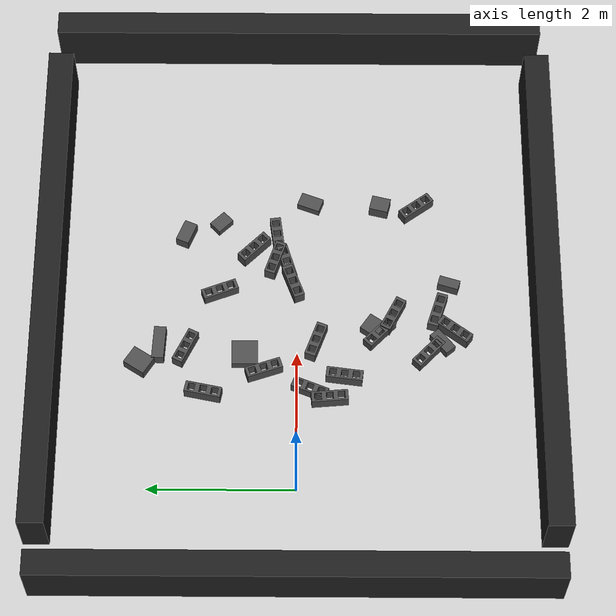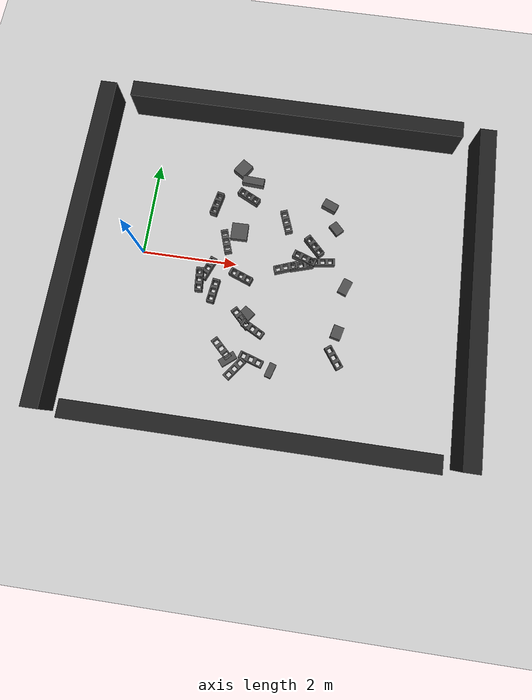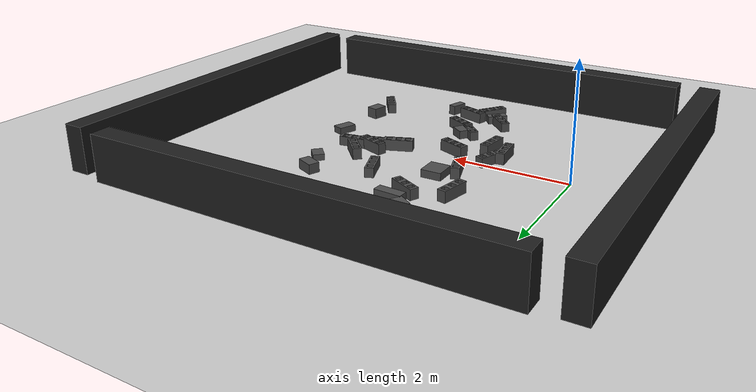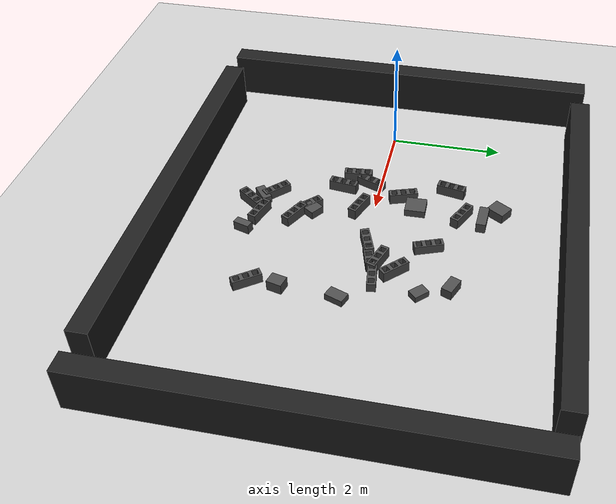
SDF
<sdf version="1.6">
 <world name="default">
  <plugin name="xbot2_clock" filename="libxbot2_gz_clock.so"/>
  <gravity>0 0 -9.81</gravity>
  <model name="ground_plane">
   <static>1</static>
   <link name="link">
    <collision name="collision">
     <geometry><plane><normal>0 0 1</normal><size>100 100</size></plane></geometry>
     <surface><friction><ode><mu>1</mu><mu2>1</mu2></ode></friction></surface>
    </collision>
    <visual name="visual">
     <cast_shadows>0</cast_shadows>
     <geometry><plane><normal>0 0 1</normal><size>100 100</size></plane></geometry>
     <material>
      <script><uri>file://media/materials/scripts/gazebo.material</uri><name>Gazebo/Grey</name></script>
     </material>
    </visual>
   </link>
  </model>
  <light name="sun" type="directional">
   <pose>0 0 10 0 -0 0</pose>
   <diffuse>0.8 0.8 0.8 1</diffuse>
   <specular>0.2 0.2 0.2 1</specular>
   <attenuation>
    <range>1000</range>
    <constant>0.9</constant>
    <linear>0.01</linear>
    <quadratic>0.001</quadratic>
   </attenuation>
   <direction>-0.5 0.1 -0.9</direction>
  </light>
  <physics name="update_rate" default="0" type="ode">
   <real_time_update_rate>4000</real_time_update_rate>
   <max_step_size>0.00025</max_step_size>
   <max_contacts>5</max_contacts>
   <bullet>
    <solver><iters>100</iters><sor>1.55</sor><type>sequential_impulse</type></solver>
    <constraints>
     <contact_surface_layer>0.2</contact_surface_layer>
     <cfm>0.005</cfm>
     <erp>0.2</erp>
     <split_impulse>1</split_impulse>
     <split_impulse_penetration_threshold>-0.01</split_impulse_penetration_threshold>
    </constraints>
   </bullet>
   <ode>
    <solver>
     <iters>50</iters>
     <sor>1.2</sor>
     <type>quick</type>
     <use_dynamic_moi_rescaling>0</use_dynamic_moi_rescaling>
    </solver>
    <constraints>
     <contact_surface_layer>0.0002</contact_surface_layer>
     <contact_max_correcting_vel>500</contact_max_correcting_vel>
     <cfm>1e-06</cfm>
     <erp>0.3</erp>
    </constraints>
   </ode>
   <real_time_factor>1</real_time_factor>
  </physics>
  <magnetic_field>6e-06 2.3e-05 -4.2e-05</magnetic_field>
  <atmosphere type="adiabatic"/>
  <scene><ambient>0.4 0.4 0.4 1</ambient><background>0.7 0.7 0.7 1</background><shadows>1</shadows></scene>
  <audio><device>default</device></audio>
  <spherical_coordinates>
   <surface_model>EARTH_WGS84</surface_model>
   <latitude_deg>0</latitude_deg>
   <longitude_deg>0</longitude_deg>
   <elevation>0</elevation>
   <heading_deg>0</heading_deg>
  </spherical_coordinates>
  <model name="box_0">
   <pose>2.089775 1.887201 0.089836 0.000000 0.000000 3.086669</pose>
   <link name="link">
    <inertial>
     <mass>1000.000000</mass>
     <inertia>
      <ixx>166.700000</ixx>
      <ixy>0.000000</ixy>
      <ixz>0.000000</ixz>
      <iyy>166.700000</iyy>
      <iyz>0.000000</iyz>
      <izz>166.700000</izz>
     </inertia>
    </inertial>
    <collision name="collision">
     <geometry><box><size>0.467557 0.166158 0.179671</size></box></geometry>
     <surface>
      <friction>
       <ode><mu>0.62</mu><mu2>0.6</mu2></ode>
       <torsional><coefficient>1.0</coefficient></torsional>
      </friction>
     </surface>
    </collision>
    <visual name="visual">
     <geometry><box><size>0.467557 0.166158 0.179671</size></box></geometry>
     <material>
      <script><name>Gazebo/DarkGrey</name><uri>file://media/materials/scripts/gazebo.material</uri></script>
     </material>
    </visual>
   </link>
  </model>
  <model name="box_1">
   <pose>1.826899 2.151613 0.084071 0.000000 0.000000 0.998339</pose>
   <link name="link">
    <inertial>
     <mass>1000.000000</mass>
     <inertia>
      <ixx>166.700000</ixx>
      <ixy>0.000000</ixy>
      <ixz>0.000000</ixz>
      <iyy>166.700000</iyy>
      <iyz>0.000000</iyz>
      <izz>166.700000</izz>
     </inertia>
    </inertial>
    <collision name="collision">
     <geometry><box><size>0.326173 0.270345 0.168143</size></box></geometry>
     <surface>
      <friction>
       <ode><mu>0.62</mu><mu2>0.6</mu2></ode>
       <torsional><coefficient>1.0</coefficient></torsional>
      </friction>
     </surface>
    </collision>
    <visual name="visual">
     <geometry><box><size>0.326173 0.270345 0.168143</size></box></geometry>
     <material>
      <script><name>Gazebo/DarkGrey</name><uri>file://media/materials/scripts/gazebo.material</uri></script>
     </material>
    </visual>
   </link>
  </model>
  <model name="box_2">
   <pose>3.486562 0.219350 0.055487 0.000000 0.000000 2.341806</pose>
   <link name="link">
    <inertial>
     <mass>1000.000000</mass>
     <inertia>
      <ixx>166.700000</ixx>
      <ixy>0.000000</ixy>
      <ixz>0.000000</ixz>
      <iyy>166.700000</iyy>
      <iyz>0.000000</iyz>
      <izz>166.700000</izz>
     </inertia>
    </inertial>
    <collision name="collision">
     <geometry><box><size>0.122181 0.135508 0.110975</size></box></geometry>
     <surface>
      <friction>
       <ode><mu>0.62</mu><mu2>0.6</mu2></ode>
       <torsional><coefficient>1.0</coefficient></torsional>
      </friction>
     </surface>
    </collision>
    <visual name="visual">
     <geometry><box><size>0.122181 0.135508 0.110975</size></box></geometry>
     <material>
      <script><name>Gazebo/DarkGrey</name><uri>file://media/materials/scripts/gazebo.material</uri></script>
     </material>
    </visual>
   </link>
  </model>
  <model name="brick_3">
   <pose>4.251493 -1.669669 0.069033 0.000000 0.000000 -0.947724</pose>
   <link name="link">
    <inertial>
     <mass>15.0</mass>
     <inertia>
      <ixx>0.07565625</ixx>
      <ixy>0.0</ixy>
      <ixz>0.0</ixz>
      <iyy>0.340625</iyy>
      <iyz>0.0</iyz>
      <izz>0.33125</izz>
     </inertia>
    </inertial>
    <collision name="collision">
     <geometry><mesh><uri>file://../config/meshes/Brick/Brick.dae</uri></mesh></geometry>
     <max_contacts>100</max_contacts>
     <surface>
      <friction>
       <ode><mu>0.62</mu><mu2>0.6</mu2></ode>
       <torsional><coefficient>1.0</coefficient></torsional>
      </friction>
     </surface>
    </collision>
    <visual name="visual">
     <geometry><mesh><uri>file://../config/meshes/Brick/Brick.dae</uri></mesh></geometry>
     <material>
      <ambient>0.3 0.3 0.3 1</ambient>
      <diffuse>0.3 0.3 0.3 1</diffuse>
      <specular>0 0 0 0</specular>
      <emissive>0 0 0 1</emissive>
     </material>
    </visual>
   </link>
  </model>
  <model name="box_4">
   <pose>4.322936 -0.180216 0.059655 0.000000 0.000000 -0.360046</pose>
   <link name="link">
    <inertial>
     <mass>1000.000000</mass>
     <inertia>
      <ixx>166.700000</ixx>
      <ixy>0.000000</ixy>
      <ixz>0.000000</ixz>
      <iyy>166.700000</iyy>
      <iyz>0.000000</iyz>
      <izz>166.700000</izz>
     </inertia>
    </inertial>
    <collision name="collision">
     <geometry><box><size>0.199363 0.322594 0.119310</size></box></geometry>
     <surface>
      <friction>
       <ode><mu>0.62</mu><mu2>0.6</mu2></ode>
       <torsional><coefficient>1.0</coefficient></torsional>
      </friction>
     </surface>
    </collision>
    <visual name="visual">
     <geometry><box><size>0.199363 0.322594 0.119310</size></box></geometry>
     <material>
      <script><name>Gazebo/DarkGrey</name><uri>file://media/materials/scripts/gazebo.material</uri></script>
     </material>
    </visual>
   </link>
  </model>
  <model name="brick_5">
   <pose>2.612326 -1.937337 0.078020 0.000000 0.000000 2.836419</pose>
   <link name="link">
    <inertial>
     <mass>15.0</mass>
     <inertia>
      <ixx>0.07565625</ixx>
      <ixy>0.0</ixy>
      <ixz>0.0</ixz>
      <iyy>0.340625</iyy>
      <iyz>0.0</iyz>
      <izz>0.33125</izz>
     </inertia>
    </inertial>
    <collision name="collision">
     <geometry><mesh><uri>file://../config/meshes/Brick/Brick.dae</uri></mesh></geometry>
     <max_contacts>100</max_contacts>
     <surface>
      <friction>
       <ode><mu>0.62</mu><mu2>0.6</mu2></ode>
       <torsional><coefficient>1.0</coefficient></torsional>
      </friction>
     </surface>
    </collision>
    <visual name="visual">
     <geometry><mesh><uri>file://../config/meshes/Brick/Brick.dae</uri></mesh></geometry>
     <material>
      <ambient>0.3 0.3 0.3 1</ambient>
      <diffuse>0.3 0.3 0.3 1</diffuse>
      <specular>0 0 0 0</specular>
      <emissive>0 0 0 1</emissive>
     </material>
    </visual>
   </link>
  </model>
  <model name="brick_6">
   <pose>1.441159 -0.178463 0.056510 0.000000 0.000000 1.193787</pose>
   <link name="link">
    <inertial>
     <mass>15.0</mass>
     <inertia>
      <ixx>0.07565625</ixx>
      <ixy>0.0</ixy>
      <ixz>0.0</ixz>
      <iyy>0.340625</iyy>
      <iyz>0.0</iyz>
      <izz>0.33125</izz>
     </inertia>
    </inertial>
    <collision name="collision">
     <geometry><mesh><uri>file://../config/meshes/Brick/Brick.dae</uri></mesh></geometry>
     <max_contacts>100</max_contacts>
     <surface>
      <friction>
       <ode><mu>0.62</mu><mu2>0.6</mu2></ode>
       <torsional><coefficient>1.0</coefficient></torsional>
      </friction>
     </surface>
    </collision>
    <visual name="visual">
     <geometry><mesh><uri>file://../config/meshes/Brick/Brick.dae</uri></mesh></geometry>
     <material>
      <ambient>0.3 0.3 0.3 1</ambient>
      <diffuse>0.3 0.3 0.3 1</diffuse>
      <specular>0 0 0 0</specular>
      <emissive>0 0 0 1</emissive>
     </material>
    </visual>
   </link>
  </model>
  <model name="box_7">
   <pose>3.811068 1.556715 0.084569 0.000000 0.000000 -1.968185</pose>
   <link name="link">
    <inertial>
     <mass>1000.000000</mass>
     <inertia>
      <ixx>166.700000</ixx>
      <ixy>0.000000</ixy>
      <ixz>0.000000</ixz>
      <iyy>166.700000</iyy>
      <iyz>0.000000</iyz>
      <izz>166.700000</izz>
     </inertia>
    </inertial>
    <collision name="collision">
     <geometry><box><size>0.185682 0.317362 0.169138</size></box></geometry>
     <surface>
      <friction>
       <ode><mu>0.62</mu><mu2>0.6</mu2></ode>
       <torsional><coefficient>1.0</coefficient></torsional>
      </friction>
     </surface>
    </collision>
    <visual name="visual">
     <geometry><box><size>0.185682 0.317362 0.169138</size></box></geometry>
     <material>
      <script><name>Gazebo/DarkGrey</name><uri>file://media/materials/scripts/gazebo.material</uri></script>
     </material>
    </visual>
   </link>
  </model>
  <model name="brick_8">
   <pose>1.720964 0.448760 0.082320 0.000000 0.000000 1.894323</pose>
   <link name="link">
    <inertial>
     <mass>15.0</mass>
     <inertia>
      <ixx>0.07565625</ixx>
      <ixy>0.0</ixy>
      <ixz>0.0</ixz>
      <iyy>0.340625</iyy>
      <iyz>0.0</iyz>
      <izz>0.33125</izz>
     </inertia>
    </inertial>
    <collision name="collision">
     <geometry><mesh><uri>file://../config/meshes/Brick/Brick.dae</uri></mesh></geometry>
     <max_contacts>100</max_contacts>
     <surface>
      <friction>
       <ode><mu>0.62</mu><mu2>0.6</mu2></ode>
       <torsional><coefficient>1.0</coefficient></torsional>
      </friction>
     </surface>
    </collision>
    <visual name="visual">
     <geometry><mesh><uri>file://../config/meshes/Brick/Brick.dae</uri></mesh></geometry>
     <material>
      <ambient>0.3 0.3 0.3 1</ambient>
      <diffuse>0.3 0.3 0.3 1</diffuse>
      <specular>0 0 0 0</specular>
      <emissive>0 0 0 1</emissive>
     </material>
    </visual>
   </link>
  </model>
  <model name="brick_9">
   <pose>2.315447 -2.166764 0.083008 0.000000 0.000000 -2.206710</pose>
   <link name="link">
    <inertial>
     <mass>15.0</mass>
     <inertia>
      <ixx>0.07565625</ixx>
      <ixy>0.0</ixy>
      <ixz>0.0</ixz>
      <iyy>0.340625</iyy>
      <iyz>0.0</iyz>
      <izz>0.33125</izz>
     </inertia>
    </inertial>
    <collision name="collision">
     <geometry><mesh><uri>file://../config/meshes/Brick/Brick.dae</uri></mesh></geometry>
     <max_contacts>100</max_contacts>
     <surface>
      <friction>
       <ode><mu>0.62</mu><mu2>0.6</mu2></ode>
       <torsional><coefficient>1.0</coefficient></torsional>
      </friction>
     </surface>
    </collision>
    <visual name="visual">
     <geometry><mesh><uri>file://../config/meshes/Brick/Brick.dae</uri></mesh></geometry>
     <material>
      <ambient>0.3 0.3 0.3 1</ambient>
      <diffuse>0.3 0.3 0.3 1</diffuse>
      <specular>0 0 0 0</specular>
      <emissive>0 0 0 1</emissive>
     </material>
    </visual>
   </link>
  </model>
  <model name="box_10">
   <pose>4.260714 -1.159803 0.095634 0.000000 0.000000 2.902949</pose>
   <link name="link">
    <inertial>
     <mass>1000.000000</mass>
     <inertia>
      <ixx>166.700000</ixx>
      <ixy>0.000000</ixy>
      <ixz>0.000000</ixz>
      <iyy>166.700000</iyy>
      <iyz>0.000000</iyz>
      <izz>166.700000</izz>
     </inertia>
    </inertial>
    <collision name="collision">
     <geometry><box><size>0.212062 0.263295 0.191268</size></box></geometry>
     <surface>
      <friction>
       <ode><mu>0.62</mu><mu2>0.6</mu2></ode>
       <torsional><coefficient>1.0</coefficient></torsional>
      </friction>
     </surface>
    </collision>
    <visual name="visual">
     <geometry><box><size>0.212062 0.263295 0.191268</size></box></geometry>
     <material>
      <script><name>Gazebo/DarkGrey</name><uri>file://media/materials/scripts/gazebo.material</uri></script>
     </material>
    </visual>
   </link>
  </model>
  <model name="brick_11">
   <pose>1.988901 -1.802206 0.054199 0.000000 0.000000 2.373654</pose>
   <link name="link">
    <inertial>
     <mass>15.0</mass>
     <inertia>
      <ixx>0.07565625</ixx>
      <ixy>0.0</ixy>
      <ixz>0.0</ixz>
      <iyy>0.340625</iyy>
      <iyz>0.0</iyz>
      <izz>0.33125</izz>
     </inertia>
    </inertial>
    <collision name="collision">
     <geometry><mesh><uri>file://../config/meshes/Brick/Brick.dae</uri></mesh></geometry>
     <max_contacts>100</max_contacts>
     <surface>
      <friction>
       <ode><mu>0.62</mu><mu2>0.6</mu2></ode>
       <torsional><coefficient>1.0</coefficient></torsional>
      </friction>
     </surface>
    </collision>
    <visual name="visual">
     <geometry><mesh><uri>file://../config/meshes/Brick/Brick.dae</uri></mesh></geometry>
     <material>
      <ambient>0.3 0.3 0.3 1</ambient>
      <diffuse>0.3 0.3 0.3 1</diffuse>
      <specular>0 0 0 0</specular>
      <emissive>0 0 0 1</emissive>
     </material>
    </visual>
   </link>
  </model>
  <model name="brick_12">
   <pose>2.047050 1.524920 0.075443 0.000000 0.000000 -0.455369</pose>
   <link name="link">
    <inertial>
     <mass>15.0</mass>
     <inertia>
      <ixx>0.07565625</ixx>
      <ixy>0.0</ixy>
      <ixz>0.0</ixz>
      <iyy>0.340625</iyy>
      <iyz>0.0</iyz>
      <izz>0.33125</izz>
     </inertia>
    </inertial>
    <collision name="collision">
     <geometry><mesh><uri>file://../config/meshes/Brick/Brick.dae</uri></mesh></geometry>
     <max_contacts>100</max_contacts>
     <surface>
      <friction>
       <ode><mu>0.62</mu><mu2>0.6</mu2></ode>
       <torsional><coefficient>1.0</coefficient></torsional>
      </friction>
     </surface>
    </collision>
    <visual name="visual">
     <geometry><mesh><uri>file://../config/meshes/Brick/Brick.dae</uri></mesh></geometry>
     <material>
      <ambient>0.3 0.3 0.3 1</ambient>
      <diffuse>0.3 0.3 0.3 1</diffuse>
      <specular>0 0 0 0</specular>
      <emissive>0 0 0 1</emissive>
     </material>
    </visual>
   </link>
  </model>
  <model name="box_13">
   <pose>3.027584 -2.101624 0.086473 0.000000 0.000000 1.273946</pose>
   <link name="link">
    <inertial>
     <mass>1000.000000</mass>
     <inertia>
      <ixx>166.700000</ixx>
      <ixy>0.000000</ixy>
      <ixz>0.000000</ixz>
      <iyy>166.700000</iyy>
      <iyz>0.000000</iyz>
      <izz>166.700000</izz>
     </inertia>
    </inertial>
    <collision name="collision">
     <geometry><box><size>0.291991 0.137439 0.172946</size></box></geometry>
     <surface>
      <friction>
       <ode><mu>0.62</mu><mu2>0.6</mu2></ode>
       <torsional><coefficient>1.0</coefficient></torsional>
      </friction>
     </surface>
    </collision>
    <visual name="visual">
     <geometry><box><size>0.291991 0.137439 0.172946</size></box></geometry>
     <material>
      <script><name>Gazebo/DarkGrey</name><uri>file://media/materials/scripts/gazebo.material</uri></script>
     </material>
    </visual>
   </link>
  </model>
  <model name="brick_14">
   <pose>2.553569 -1.323611 0.073181 0.000000 0.000000 -0.481102</pose>
   <link name="link">
    <inertial>
     <mass>15.0</mass>
     <inertia>
      <ixx>0.07565625</ixx>
      <ixy>0.0</ixy>
      <ixz>0.0</ixz>
      <iyy>0.340625</iyy>
      <iyz>0.0</iyz>
      <izz>0.33125</izz>
     </inertia>
    </inertial>
    <collision name="collision">
     <geometry><mesh><uri>file://../config/meshes/Brick/Brick.dae</uri></mesh></geometry>
     <max_contacts>100</max_contacts>
     <surface>
      <friction>
       <ode><mu>0.62</mu><mu2>0.6</mu2></ode>
       <torsional><coefficient>1.0</coefficient></torsional>
      </friction>
     </surface>
    </collision>
    <visual name="visual">
     <geometry><mesh><uri>file://../config/meshes/Brick/Brick.dae</uri></mesh></geometry>
     <material>
      <ambient>0.3 0.3 0.3 1</ambient>
      <diffuse>0.3 0.3 0.3 1</diffuse>
      <specular>0 0 0 0</specular>
      <emissive>0 0 0 1</emissive>
     </material>
    </visual>
   </link>
  </model>
  <model name="box_15">
   <pose>1.965664 0.711265 0.066152 0.000000 0.000000 -1.554953</pose>
   <link name="link">
    <inertial>
     <mass>1000.000000</mass>
     <inertia>
      <ixx>166.700000</ixx>
      <ixy>0.000000</ixy>
      <ixz>0.000000</ixz>
      <iyy>166.700000</iyy>
      <iyz>0.000000</iyz>
      <izz>166.700000</izz>
     </inertia>
    </inertial>
    <collision name="collision">
     <geometry><box><size>0.358448 0.350168 0.132304</size></box></geometry>
     <surface>
      <friction>
       <ode><mu>0.62</mu><mu2>0.6</mu2></ode>
       <torsional><coefficient>1.0</coefficient></torsional>
      </friction>
     </surface>
    </collision>
    <visual name="visual">
     <geometry><box><size>0.358448 0.350168 0.132304</size></box></geometry>
     <material>
      <script><name>Gazebo/DarkGrey</name><uri>file://media/materials/scripts/gazebo.material</uri></script>
     </material>
    </visual>
   </link>
  </model>
  <model name="box_16">
   <pose>4.002000 1.071229 0.054928 0.000000 0.000000 0.768140</pose>
   <link name="link">
    <inertial>
     <mass>1000.000000</mass>
     <inertia>
      <ixx>166.700000</ixx>
      <ixy>0.000000</ixy>
      <ixz>0.000000</ixz>
      <iyy>166.700000</iyy>
      <iyz>0.000000</iyz>
      <izz>166.700000</izz>
     </inertia>
    </inertial>
    <collision name="collision">
     <geometry><box><size>0.191612 0.264264 0.109856</size></box></geometry>
     <surface>
      <friction>
       <ode><mu>0.62</mu><mu2>0.6</mu2></ode>
       <torsional><coefficient>1.0</coefficient></torsional>
      </friction>
     </surface>
    </collision>
    <visual name="visual">
     <geometry><box><size>0.191612 0.264264 0.109856</size></box></geometry>
     <material>
      <script><name>Gazebo/DarkGrey</name><uri>file://media/materials/scripts/gazebo.material</uri></script>
     </material>
    </visual>
   </link>
  </model>
  <model name="brick_17">
   <pose>2.146264 -0.261588 0.088169 0.000000 0.000000 2.785904</pose>
   <link name="link">
    <inertial>
     <mass>15.0</mass>
     <inertia>
      <ixx>0.07565625</ixx>
      <ixy>0.0</ixy>
      <ixz>0.0</ixz>
      <iyy>0.340625</iyy>
      <iyz>0.0</iyz>
      <izz>0.33125</izz>
     </inertia>
    </inertial>
    <collision name="collision">
     <geometry><mesh><uri>file://../config/meshes/Brick/Brick.dae</uri></mesh></geometry>
     <max_contacts>100</max_contacts>
     <surface>
      <friction>
       <ode><mu>0.62</mu><mu2>0.6</mu2></ode>
       <torsional><coefficient>1.0</coefficient></torsional>
      </friction>
     </surface>
    </collision>
    <visual name="visual">
     <geometry><mesh><uri>file://../config/meshes/Brick/Brick.dae</uri></mesh></geometry>
     <material>
      <ambient>0.3 0.3 0.3 1</ambient>
      <diffuse>0.3 0.3 0.3 1</diffuse>
      <specular>0 0 0 0</specular>
      <emissive>0 0 0 1</emissive>
     </material>
    </visual>
   </link>
  </model>
  <model name="brick_18">
   <pose>3.409119 0.307014 0.088497 0.000000 0.000000 2.812340</pose>
   <link name="link">
    <inertial>
     <mass>15.0</mass>
     <inertia>
      <ixx>0.07565625</ixx>
      <ixy>0.0</ixy>
      <ixz>0.0</ixz>
      <iyy>0.340625</iyy>
      <iyz>0.0</iyz>
      <izz>0.33125</izz>
     </inertia>
    </inertial>
    <collision name="collision">
     <geometry><mesh><uri>file://../config/meshes/Brick/Brick.dae</uri></mesh></geometry>
     <max_contacts>100</max_contacts>
     <surface>
      <friction>
       <ode><mu>0.62</mu><mu2>0.6</mu2></ode>
       <torsional><coefficient>1.0</coefficient></torsional>
      </friction>
     </surface>
    </collision>
    <visual name="visual">
     <geometry><mesh><uri>file://../config/meshes/Brick/Brick.dae</uri></mesh></geometry>
     <material>
      <ambient>0.3 0.3 0.3 1</ambient>
      <diffuse>0.3 0.3 0.3 1</diffuse>
      <specular>0 0 0 0</specular>
      <emissive>0 0 0 1</emissive>
     </material>
    </visual>
   </link>
  </model>
  <model name="brick_19">
   <pose>3.581083 0.604423 0.084884 0.000000 0.000000 2.349508</pose>
   <link name="link">
    <inertial>
     <mass>15.0</mass>
     <inertia>
      <ixx>0.07565625</ixx>
      <ixy>0.0</ixy>
      <ixz>0.0</ixz>
      <iyy>0.340625</iyy>
      <iyz>0.0</iyz>
      <izz>0.33125</izz>
     </inertia>
    </inertial>
    <collision name="collision">
     <geometry><mesh><uri>file://../config/meshes/Brick/Brick.dae</uri></mesh></geometry>
     <max_contacts>100</max_contacts>
     <surface>
      <friction>
       <ode><mu>0.62</mu><mu2>0.6</mu2></ode>
       <torsional><coefficient>1.0</coefficient></torsional>
      </friction>
     </surface>
    </collision>
    <visual name="visual">
     <geometry><mesh><uri>file://../config/meshes/Brick/Brick.dae</uri></mesh></geometry>
     <material>
      <ambient>0.3 0.3 0.3 1</ambient>
      <diffuse>0.3 0.3 0.3 1</diffuse>
      <specular>0 0 0 0</specular>
      <emissive>0 0 0 1</emissive>
     </material>
    </visual>
   </link>
  </model>
  <model name="brick_20">
   <pose>3.799129 0.283488 0.054398 0.000000 0.000000 0.133893</pose>
   <link name="link">
    <inertial>
     <mass>15.0</mass>
     <inertia>
      <ixx>0.07565625</ixx>
      <ixy>0.0</ixy>
      <ixz>0.0</ixz>
      <iyy>0.340625</iyy>
      <iyz>0.0</iyz>
      <izz>0.33125</izz>
     </inertia>
    </inertial>
    <collision name="collision">
     <geometry><mesh><uri>file://../config/meshes/Brick/Brick.dae</uri></mesh></geometry>
     <max_contacts>100</max_contacts>
     <surface>
      <friction>
       <ode><mu>0.62</mu><mu2>0.6</mu2></ode>
       <torsional><coefficient>1.0</coefficient></torsional>
      </friction>
     </surface>
    </collision>
    <visual name="visual">
     <geometry><mesh><uri>file://../config/meshes/Brick/Brick.dae</uri></mesh></geometry>
     <material>
      <ambient>0.3 0.3 0.3 1</ambient>
      <diffuse>0.3 0.3 0.3 1</diffuse>
      <specular>0 0 0 0</specular>
      <emissive>0 0 0 1</emissive>
     </material>
    </visual>
   </link>
  </model>
  <model name="brick_21">
   <pose>2.286429 -1.135577 0.050927 0.000000 0.000000 -0.775191</pose>
   <link name="link">
    <inertial>
     <mass>15.0</mass>
     <inertia>
      <ixx>0.07565625</ixx>
      <ixy>0.0</ixy>
      <ixz>0.0</ixz>
      <iyy>0.340625</iyy>
      <iyz>0.0</iyz>
      <izz>0.33125</izz>
     </inertia>
    </inertial>
    <collision name="collision">
     <geometry><mesh><uri>file://../config/meshes/Brick/Brick.dae</uri></mesh></geometry>
     <max_contacts>100</max_contacts>
     <surface>
      <friction>
       <ode><mu>0.62</mu><mu2>0.6</mu2></ode>
       <torsional><coefficient>1.0</coefficient></torsional>
      </friction>
     </surface>
    </collision>
    <visual name="visual">
     <geometry><mesh><uri>file://../config/meshes/Brick/Brick.dae</uri></mesh></geometry>
     <material>
      <ambient>0.3 0.3 0.3 1</ambient>
      <diffuse>0.3 0.3 0.3 1</diffuse>
      <specular>0 0 0 0</specular>
      <emissive>0 0 0 1</emissive>
     </material>
    </visual>
   </link>
  </model>
  <model name="brick_22">
   <pose>1.628291 -0.648708 0.090148 0.000000 0.000000 -1.699052</pose>
   <link name="link">
    <inertial>
     <mass>15.0</mass>
     <inertia>
      <ixx>0.07565625</ixx>
      <ixy>0.0</ixy>
      <ixz>0.0</ixz>
      <iyy>0.340625</iyy>
      <iyz>0.0</iyz>
      <izz>0.33125</izz>
     </inertia>
    </inertial>
    <collision name="collision">
     <geometry><mesh><uri>file://../config/meshes/Brick/Brick.dae</uri></mesh></geometry>
     <max_contacts>100</max_contacts>
     <surface>
      <friction>
       <ode><mu>0.62</mu><mu2>0.6</mu2></ode>
       <torsional><coefficient>1.0</coefficient></torsional>
      </friction>
     </surface>
    </collision>
    <visual name="visual">
     <geometry><mesh><uri>file://../config/meshes/Brick/Brick.dae</uri></mesh></geometry>
     <material>
      <ambient>0.3 0.3 0.3 1</ambient>
      <diffuse>0.3 0.3 0.3 1</diffuse>
      <specular>0 0 0 0</specular>
      <emissive>0 0 0 1</emissive>
     </material>
    </visual>
   </link>
  </model>
  <model name="brick_23">
   <pose>3.043683 0.055228 0.084687 0.000000 0.000000 0.362048</pose>
   <link name="link">
    <inertial>
     <mass>15.0</mass>
     <inertia>
      <ixx>0.07565625</ixx>
      <ixy>0.0</ixy>
      <ixz>0.0</ixz>
      <iyy>0.340625</iyy>
      <iyz>0.0</iyz>
      <izz>0.33125</izz>
     </inertia>
    </inertial>
    <collision name="collision">
     <geometry><mesh><uri>file://../config/meshes/Brick/Brick.dae</uri></mesh></geometry>
     <max_contacts>100</max_contacts>
     <surface>
      <friction>
       <ode><mu>0.62</mu><mu2>0.6</mu2></ode>
       <torsional><coefficient>1.0</coefficient></torsional>
      </friction>
     </surface>
    </collision>
    <visual name="visual">
     <geometry><mesh><uri>file://../config/meshes/Brick/Brick.dae</uri></mesh></geometry>
     <material>
      <ambient>0.3 0.3 0.3 1</ambient>
      <diffuse>0.3 0.3 0.3 1</diffuse>
      <specular>0 0 0 0</specular>
      <emissive>0 0 0 1</emissive>
     </material>
    </visual>
   </link>
  </model>
  <model name="brick_24">
   <pose>1.389311 1.267300 0.086638 0.000000 0.000000 1.370964</pose>
   <link name="link">
    <inertial>
     <mass>15.0</mass>
     <inertia>
      <ixx>0.07565625</ixx>
      <ixy>0.0</ixy>
      <ixz>0.0</ixz>
      <iyy>0.340625</iyy>
      <iyz>0.0</iyz>
      <izz>0.33125</izz>
     </inertia>
    </inertial>
    <collision name="collision">
     <geometry><mesh><uri>file://../config/meshes/Brick/Brick.dae</uri></mesh></geometry>
     <max_contacts>100</max_contacts>
     <surface>
      <friction>
       <ode><mu>0.62</mu><mu2>0.6</mu2></ode>
       <torsional><coefficient>1.0</coefficient></torsional>
      </friction>
     </surface>
    </collision>
    <visual name="visual">
     <geometry><mesh><uri>file://../config/meshes/Brick/Brick.dae</uri></mesh></geometry>
     <material>
      <ambient>0.3 0.3 0.3 1</ambient>
      <diffuse>0.3 0.3 0.3 1</diffuse>
      <specular>0 0 0 0</specular>
      <emissive>0 0 0 1</emissive>
     </material>
    </visual>
   </link>
  </model>
  <model name="box_25">
   <pose>2.371244 -1.049132 0.073247 0.000000 0.000000 0.963650</pose>
   <link name="link">
    <inertial>
     <mass>1000.000000</mass>
     <inertia>
      <ixx>166.700000</ixx>
      <ixy>0.000000</ixy>
      <ixz>0.000000</ixz>
      <iyy>166.700000</iyy>
      <iyz>0.000000</iyz>
      <izz>166.700000</izz>
     </inertia>
    </inertial>
    <collision name="collision">
     <geometry><box><size>0.269601 0.256074 0.146494</size></box></geometry>
     <surface>
      <friction>
       <ode><mu>0.62</mu><mu2>0.6</mu2></ode>
       <torsional><coefficient>1.0</coefficient></torsional>
      </friction>
     </surface>
    </collision>
    <visual name="visual">
     <geometry><box><size>0.269601 0.256074 0.146494</size></box></geometry>
     <material>
      <script><name>Gazebo/DarkGrey</name><uri>file://media/materials/scripts/gazebo.material</uri></script>
     </material>
    </visual>
   </link>
  </model>
  <model name="box_26">
   <pose>2.147787 -1.995031 0.068701 0.000000 0.000000 -2.458853</pose>
   <link name="link">
    <inertial>
     <mass>1000.000000</mass>
     <inertia>
      <ixx>166.700000</ixx>
      <ixy>0.000000</ixy>
      <ixz>0.000000</ixz>
      <iyy>166.700000</iyy>
      <iyz>0.000000</iyz>
      <izz>166.700000</izz>
     </inertia>
    </inertial>
    <collision name="collision">
     <geometry><box><size>0.349957 0.161301 0.137403</size></box></geometry>
     <surface>
      <friction>
       <ode><mu>0.62</mu><mu2>0.6</mu2></ode>
       <torsional><coefficient>1.0</coefficient></torsional>
      </friction>
     </surface>
    </collision>
    <visual name="visual">
     <geometry><box><size>0.349957 0.161301 0.137403</size></box></geometry>
     <material>
      <script><name>Gazebo/DarkGrey</name><uri>file://media/materials/scripts/gazebo.material</uri></script>
     </material>
    </visual>
   </link>
  </model>
  <model name="brick_27">
   <pose>2.923821 1.071305 0.057335 0.000000 0.000000 1.931195</pose>
   <link name="link">
    <inertial>
     <mass>15.0</mass>
     <inertia>
      <ixx>0.07565625</ixx>
      <ixy>0.0</ixy>
      <ixz>0.0</ixz>
      <iyy>0.340625</iyy>
      <iyz>0.0</iyz>
      <izz>0.33125</izz>
     </inertia>
    </inertial>
    <collision name="collision">
     <geometry><mesh><uri>file://../config/meshes/Brick/Brick.dae</uri></mesh></geometry>
     <max_contacts>100</max_contacts>
     <surface>
      <friction>
       <ode><mu>0.62</mu><mu2>0.6</mu2></ode>
       <torsional><coefficient>1.0</coefficient></torsional>
      </friction>
     </surface>
    </collision>
    <visual name="visual">
     <geometry><mesh><uri>file://../config/meshes/Brick/Brick.dae</uri></mesh></geometry>
     <material>
      <ambient>0.3 0.3 0.3 1</ambient>
      <diffuse>0.3 0.3 0.3 1</diffuse>
      <specular>0 0 0 0</specular>
      <emissive>0 0 0 1</emissive>
     </material>
    </visual>
   </link>
  </model>
  <model name="brick_28">
   <pose>3.362930 0.146528 0.058975 0.000000 0.000000 0.300072</pose>
   <link name="link">
    <inertial>
     <mass>15.0</mass>
     <inertia>
      <ixx>0.07565625</ixx>
      <ixy>0.0</ixy>
      <ixz>0.0</ixz>
      <iyy>0.340625</iyy>
      <iyz>0.0</iyz>
      <izz>0.33125</izz>
     </inertia>
    </inertial>
    <collision name="collision">
     <geometry><mesh><uri>file://../config/meshes/Brick/Brick.dae</uri></mesh></geometry>
     <max_contacts>100</max_contacts>
     <surface>
      <friction>
       <ode><mu>0.62</mu><mu2>0.6</mu2></ode>
       <torsional><coefficient>1.0</coefficient></torsional>
      </friction>
     </surface>
    </collision>
    <visual name="visual">
     <geometry><mesh><uri>file://../config/meshes/Brick/Brick.dae</uri></mesh></geometry>
     <material>
      <ambient>0.3 0.3 0.3 1</ambient>
      <diffuse>0.3 0.3 0.3 1</diffuse>
      <specular>0 0 0 0</specular>
      <emissive>0 0 0 1</emissive>
     </material>
    </visual>
   </link>
  </model>
  <model name="brick_29">
   <pose>1.298895 -0.448179 0.089224 0.000000 0.000000 1.655160</pose>
   <link name="link">
    <inertial>
     <mass>15.0</mass>
     <inertia>
      <ixx>0.07565625</ixx>
      <ixy>0.0</ixy>
      <ixz>0.0</ixz>
      <iyy>0.340625</iyy>
      <iyz>0.0</iyz>
      <izz>0.33125</izz>
     </inertia>
    </inertial>
    <collision name="collision">
     <geometry><mesh><uri>file://../config/meshes/Brick/Brick.dae</uri></mesh></geometry>
     <max_contacts>100</max_contacts>
     <surface>
      <friction>
       <ode><mu>0.62</mu><mu2>0.6</mu2></ode>
       <torsional><coefficient>1.0</coefficient></torsional>
      </friction>
     </surface>
    </collision>
    <visual name="visual">
     <geometry><mesh><uri>file://../config/meshes/Brick/Brick.dae</uri></mesh></geometry>
     <material>
      <ambient>0.3 0.3 0.3 1</ambient>
      <diffuse>0.3 0.3 0.3 1</diffuse>
      <specular>0 0 0 0</specular>
      <emissive>0 0 0 1</emissive>
     </material>
    </visual>
   </link>
  </model>
  <model name="wall_0">
   <pose>-1.300000 0.000000 0.4 0 0 0.000000</pose>
   <link name="link">
    <inertial>
     <mass>10000.0</mass>
     <inertia><ixx>166.7</ixx><ixy>0</ixy><ixz>0</ixz><iyy>166.7</iyy><iyz>0</iyz><izz>166.7</izz></inertia>
    </inertial>
    <collision name="collision">
     <geometry><box><size>0.350000 6.950000 0.8</size></box></geometry>
     <surface>
      <friction>
       <ode><mu>0.62</mu><mu2>0.6</mu2></ode>
       <torsional><coefficient>1.0</coefficient></torsional>
      </friction>
     </surface>
    </collision>
    <visual name="visual">
     <geometry><box><size>0.350000 6.950000 0.8</size></box></geometry>
     <material>
      <script><name>Gazebo/FlatBlack</name><uri>file://media/materials/scripts/gazebo.material</uri></script>
     </material>
    </visual>
   </link>
  </model>
  <model name="wall_1">
   <pose>6.900000 0.000000 0.4 0 0 0.000000</pose>
   <link name="link">
    <inertial>
     <mass>10000.0</mass>
     <inertia><ixx>166.7</ixx><ixy>0</ixy><ixz>0</ixz><iyy>166.7</iyy><iyz>0</iyz><izz>166.7</izz></inertia>
    </inertial>
    <collision name="collision">
     <geometry><box><size>0.350000 6.950000 0.8</size></box></geometry>
     <surface>
      <friction>
       <ode><mu>0.62</mu><mu2>0.6</mu2></ode>
       <torsional><coefficient>1.0</coefficient></torsional>
      </friction>
     </surface>
    </collision>
    <visual name="visual">
     <geometry><box><size>0.350000 6.950000 0.8</size></box></geometry>
     <material>
      <script><name>Gazebo/FlatBlack</name><uri>file://media/materials/scripts/gazebo.material</uri></script>
     </material>
    </visual>
   </link>
  </model>
  <model name="wall_2">
   <pose>2.800000 -3.400000 0.4 0 0 0.000000</pose>
   <link name="link">
    <inertial>
     <mass>10000.0</mass>
     <inertia><ixx>166.7</ixx><ixy>0</ixy><ixz>0</ixz><iyy>166.7</iyy><iyz>0</iyz><izz>166.7</izz></inertia>
    </inertial>
    <collision name="collision">
     <geometry><box><size>7.150000 0.350000 0.8</size></box></geometry>
     <surface>
      <friction>
       <ode><mu>0.62</mu><mu2>0.6</mu2></ode>
       <torsional><coefficient>1.0</coefficient></torsional>
      </friction>
     </surface>
    </collision>
    <visual name="visual">
     <geometry><box><size>7.150000 0.350000 0.8</size></box></geometry>
     <material>
      <script><name>Gazebo/FlatBlack</name><uri>file://media/materials/scripts/gazebo.material</uri></script>
     </material>
    </visual>
   </link>
  </model>
  <model name="wall_3">
   <pose>2.800000 3.400000 0.4 0 0 0.000000</pose>
   <link name="link">
    <inertial>
     <mass>10000.0</mass>
     <inertia><ixx>166.7</ixx><ixy>0</ixy><ixz>0</ixz><iyy>166.7</iyy><iyz>0</iyz><izz>166.7</izz></inertia>
    </inertial>
    <collision name="collision">
     <geometry><box><size>7.150000 0.350000 0.8</size></box></geometry>
     <surface>
      <friction>
       <ode><mu>0.62</mu><mu2>0.6</mu2></ode>
       <torsional><coefficient>1.0</coefficient></torsional>
      </friction>
     </surface>
    </collision>
    <visual name="visual">
     <geometry><box><size>7.150000 0.350000 0.8</size></box></geometry>
     <material>
      <script><name>Gazebo/FlatBlack</name><uri>file://media/materials/scripts/gazebo.material</uri></script>
     </material>
    </visual>
   </link>
  </model>
 </world>
</sdf>
